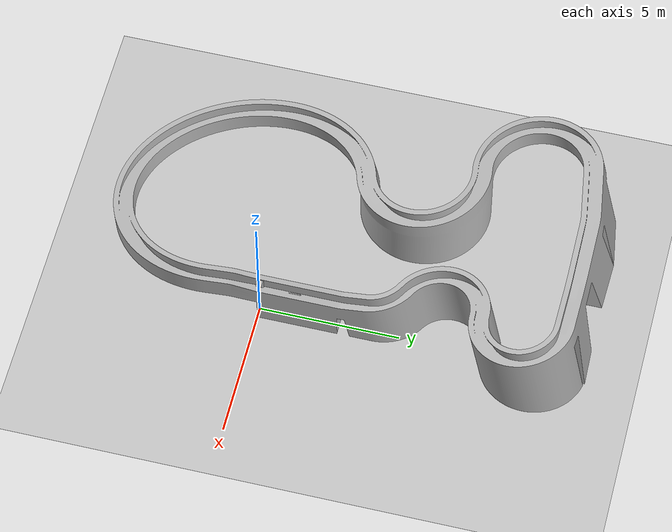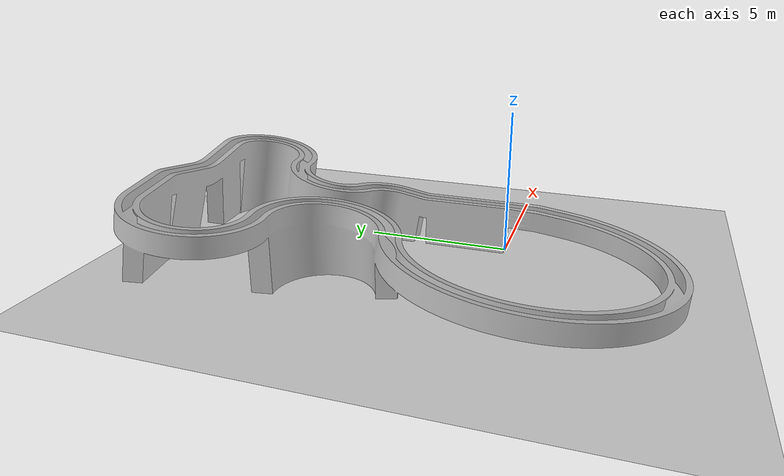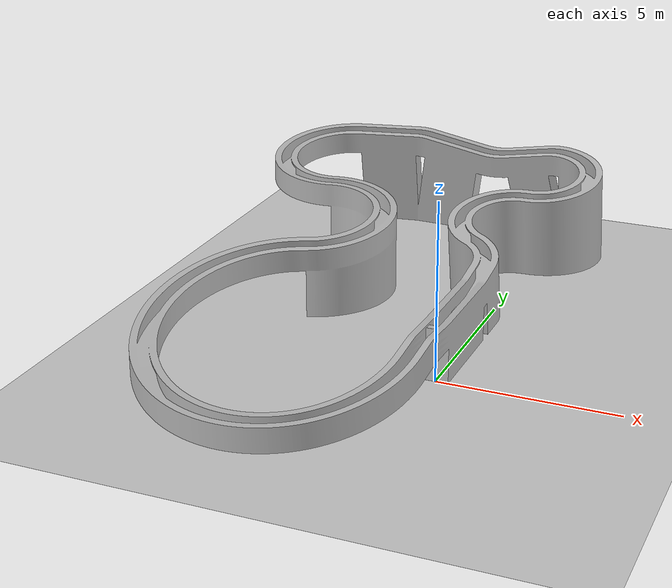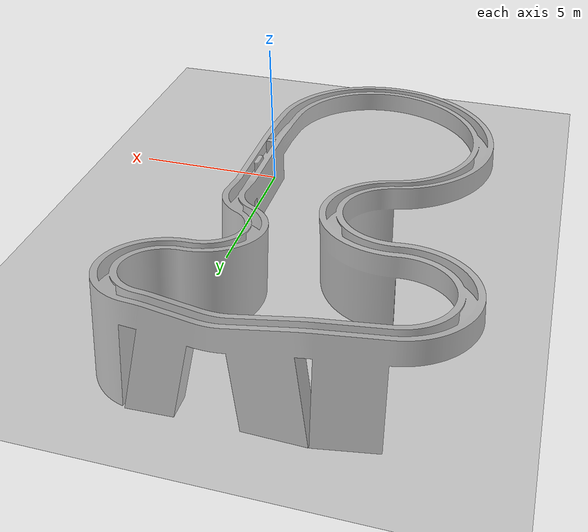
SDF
<?xml version="1.0"?>
<sdf version="1.5">
  <world name="default">

    <include>
      <uri>model://ground_plane</uri>
    </include>

    <include>
      <uri>model://sun</uri>
    </include>

    <include>
      <uri>model://trajectory_2</uri>
      <pose>0 0 1  0 0 -1.570796327</pose>
    </include>

    <include>
      <uri>model://soap_marker</uri>
      <pose>0 1.3 1.3  0 0 0</pose>
    </include>

    <include>
      <uri>model://my_camera</uri>
      <pose>0 0 1.3  0 0 0</pose>
    </include>

  </world>
</sdf>

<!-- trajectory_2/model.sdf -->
<sdf version="1.6">
  <model name="trajectory_2">
    <static>true</static>
    <link name="link">
      <collision name="collision">
        <geometry>
          <mesh>
            <uri>model://trajectory_2/meshes/trajectory_2.dae</uri>
          </mesh>
        </geometry>
      </collision>
      <visual name="visual">
        <geometry>
          <mesh>
            <uri>model://trajectory_2/meshes/trajectory_2.dae</uri>
          </mesh>
        </geometry>
      </visual>
    </link>
  </model>
</sdf>

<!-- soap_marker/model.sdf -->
<sdf version="1.5">
  <model name="soap_marker">
    <pose>0 0 0 0 0 0</pose>
    <static>false</static>

    <link name="aruco_link_base">

      <visual name="visual">
        <geometry>
          <mesh>
            <uri>model://soap_marker/meshes/soap_marker.dae</uri>
          </mesh>
        </geometry>
        <material>
          <script>
            <uri>model://soap_marker/materials/scripts</uri>
            <uri>model://soap_marker/materials/textures</uri>
            <name>ArucoVisualMarker26/Marker</name>
          </script>
          <emissive>1 1 1 1</emissive>
        </material>
      </visual>

      <collision name="collision">
        <geometry>
          <mesh>
            <uri>model://soap_marker/meshes/soap_marker.dae</uri>
          </mesh>
        </geometry>
      </collision>

    </link>

    <plugin name="aruco_move" filename="libgazebo_ros_planar_move.so">
      <commandTopic>aruco_cmd_vel</commandTopic>
      <odometryTopic>odom</odometryTopic>
      <odometryFrame>odom</odometryFrame>                         <!-- header frame id -->
      <robotBaseFrame>aruco_link_base</robotBaseFrame>            <!-- child  frame id -->
    </plugin>

  </model>
</sdf>

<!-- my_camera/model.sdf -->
<sdf version="1.5">
  <model name="my_camera">
    <pose>0 0 0 0 0 0</pose>
    <static>false</static>

    <link name="camera_link_base">

      <visual name="visual">
        <geometry>
          <box>
            <size>0.5 0.2 0.5</size>
          </box>
        </geometry>
      </visual>

      <collision name="collision">
        <geometry>
          <box>
            <size>0.5 0.2 0.5</size>
          </box>
        </geometry>
      </collision>

      <sensor name="camera_link_camera" type="camera">
        <pose>0 0 0 0 0 1.570796327</pose>

        <camera>
          <horizontal_fov>1.047197551</horizontal_fov>
          <image>
            <width>1920</width>
            <height>1080</height>
            <format>R8G8B8</format>
          </image>
        </camera>

        <always_on>1</always_on>
        <update_rate>30</update_rate>
        <visualize>true</visualize>

        <plugin name="camera_controller" filename="libgazebo_ros_camera.so">
          <cameraName>camera</cameraName>
          <imageTopicName>image_raw</imageTopicName>
          <cameraInfoTopicName>camera_info</cameraInfoTopicName>
          <odometryTopic>odom</odometryTopic>
          <odometryFrame>odom</odometryFrame>
          <frameName>camera_link_optical</frameName>
        </plugin>

      </sensor>

    </link>

    <!-- model plugin -->
    <plugin name="camera_move" filename="libgazebo_ros_planar_move.so">
      <commandTopic>camera_cmd_vel</commandTopic>
      <odometryTopic>odom</odometryTopic>
      <odometryFrame>odom</odometryFrame>                         <!-- header frame id -->
      <robotBaseFrame>camera_link_base</robotBaseFrame>           <!-- child  frame id -->
    </plugin>

  </model>
</sdf>
